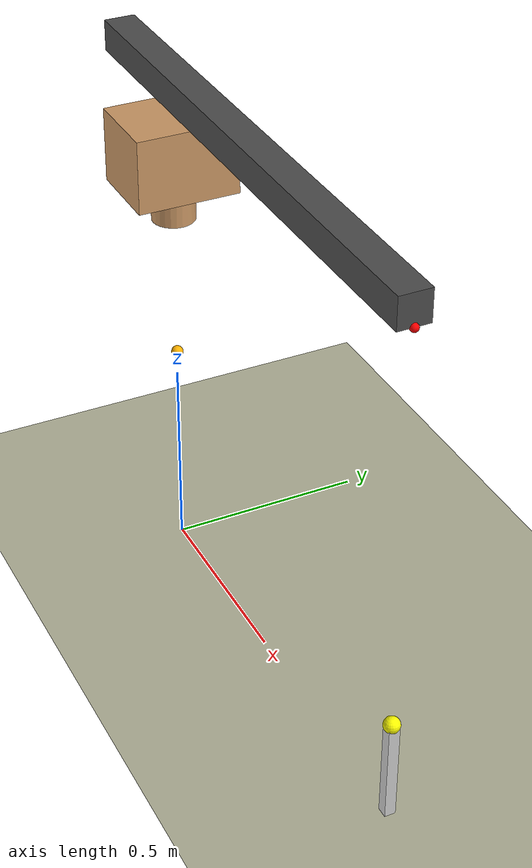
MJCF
<mujoco>
  <option integrator="implicitfast" jacobian="sparse" solver="CG" tolerance="1e-5" >
    <flag energy="enable" warmstart="enable"/>
  </option>
  <compiler autolimits="true" angle="radian"/>

  <worldbody>
    <light diffuse=".75 .75 .75" pos="0 0 10" dir="0 0 -1"/>
    <body name="floor" pos="0 0 0.00000001" >
         <geom type="plane" size="5 5 0.1" rgba=".7 .7 .6 1"/>
    </body> <!-- floor-->

    <body name="base" pos="0 0 0.984" euler="0 0 0">
     <geom name="base_geom"  type="cylinder" size="0.054 0.042 " rgba=".8 .6 .4 1" mass="0.5"/>
    <!-- joint type="free" name="free_joint"/ -->
    <!-- joint type="ball" name="ball_joint"/ -->

      <site name="crane_base" pos="0 0 0" size="0.01" />

      <body name="cab" pos="0 0 0.134" gravcomp="0">
         <site name="cab_bottom" pos="0 0 -0.092" size="0.01" />
        <joint name="slew-joint" type="hinge" axis="0 0 1" pos="0 0 -.5" limited="true" range="-1.3 1.3" armature="0.005" />
        <geom name="cab_geom" type="box" size=".100 .128 .092" rgba=".8 .6 .4 1" mass="7.935"/>

        <site name="cab_imu" pos="0 0 0" size="0.01" />

        <body name="boom" pos="0.41 0 .18" gravcomp="0">
        <!-- 0.18 = 14cm from luff actuator to top of the cab mount plate + half boom height-->
          <joint name="luff-joint" type="hinge" pos="-0.41 0 -.18" axis="0 -1 0" range="0.001 1.2" limited="true" armature="0.005" />
          <geom name="boom_geom" type="box" size="0.71 .0383 .0383" rgba=".3 .3 .3 1" contype="1" conaffinity="1" mass="5.777"/>

          <site name="boom_imu" pos="0 0 0" size="0.01" />

          <site name="b_tip" pos="0.71 0 -.038" rgba="1 0 0 1" size="0.01" />
          <body name="boom_tip" pos="0.71 0 -.038">
            <geom name="boom_tip_geom" pos="0 0 0" type="sphere" size="0.01" rgba=".3 .3 .3 1" />
            <joint name="boom-tip-beta-hinge" type="hinge" axis="1 0 0" damping="0.01" limited="true" range="-1.5 1.5"/>
            <joint name="boom-tip-phi-hinge" type="hinge" axis="0 1 0" damping="0.01" limited="true" range="-1.5 1.5"/>
            <joint name="hoist-slider" type="slide" axis="0 0 -1" limited="true" range="0.07 0.55" ref="1.0" armature="0.00032"/>

            <body name="payload_tip" pos="0 0 -1.0">
              <geom name="p_tip_geom" type="sphere" size=".02" rgba="1 1 0 1" contype="1" conaffinity="1" mass="0.01"/>
              <site name="p_tip" pos="0 0 0" size="0.01"/>
              <joint name="p-tip-eta-hinge" type="hinge" axis="1 0 0" damping="0.0001" limited="true" range="-1.5 1.5"/>
              <joint name="p-tip-sigma-hinge" type="hinge" axis="0 1 0" damping="0.0001" limited="true" range="-1.5 1.5"/>

                <body name="payload" pos="0 0 0">
                  <!-- inertial pos="0 0 -0.13" mass="0.2" diaginertia="0.0001 0.0001 0.0001"/ -->
                  <geom name="payload_geom" pos="0 0 -0.13" type="box" size="0.0135 0.0135 0.13" rgba=".8 .8 .8 1" contype="1" conaffinity="1" mass="0.2"/>
                  <site name="p_cg" pos="0 0 -0.13"/>
                </body> <!-- payload -->

            </body> <!-- payload tip-->
          </body> <!-- boom tip-->
        </body> <!-- boom -->
      </body> <!-- cab -->
    </body> <!-- base -->

    <!-- place vicon mocap under the base of the crane, on the motion platform-->
   <body name="vicon" mocap="true" pos="0 0 0.564">
      <geom name="vicon_geom" type="sphere" size="0.015" rgba="1 0.7 0 1" condim="1"/>
      <site name="vicon_marker" pos="0 0 0"/>
    </body> <!-- vicon -->

  </worldbody>

  <equality>
        <!-- weld between site1 and site2 is not supported by mjpc currently -->
        <weld name="tracking" body1="base" body2="vicon"  active="true" solimp="0.9 0.95 0.001 0.9 6"/>
    </equality>

  <contact>
        <exclude name="boom_hit_cab_in_luff" body1="cab" body2="boom"/>
        <exclude name="payload_boom" body1="payload" body2="boom"/>
        <exclude name="floor_payload" body1="floor" body2="payload"/>
        <exclude name="vicon_payload" body1="vicon" body2="payload"/>
        <exclude name="vicon_p_tip" body1="vicon" body2="payload_tip"/>

  </contact>

<actuator>
   <velocity name="slew-velocity" joint="slew-joint" kv="0.0006385" gear="100" forcerange="-68 68" ctrlrange="-120 120" />
 <velocity name="luff-velocity" joint="luff-joint" gear="200" kv="0.11" forcerange="-68 68" ctrlrange="-105 105"/>
  <!-- tuned hoist actuator-->
    <!-- velocity name="hoist-velocity" joint="hoist-slider" ctrlrange="-0.295 0.295" kv="2500" lengthrange="0.1 0.3"/ -->
</actuator>

<!-- include file="motion_platform.xml" / -->

</mujoco>
